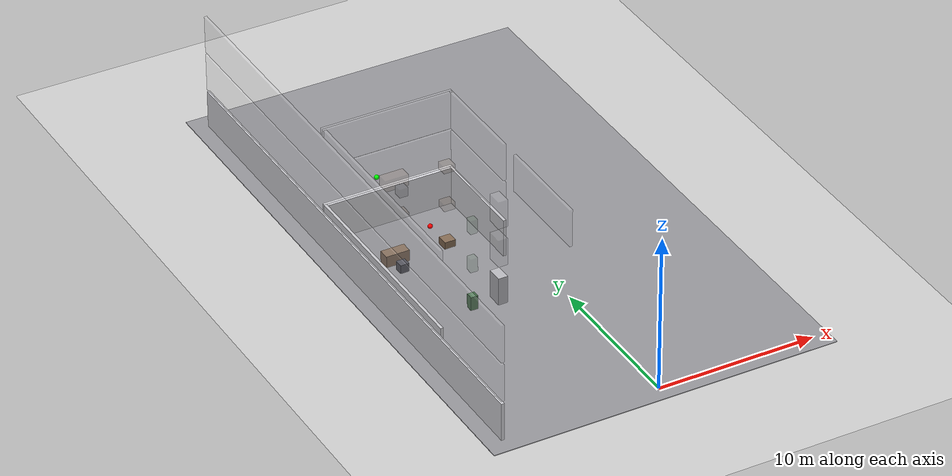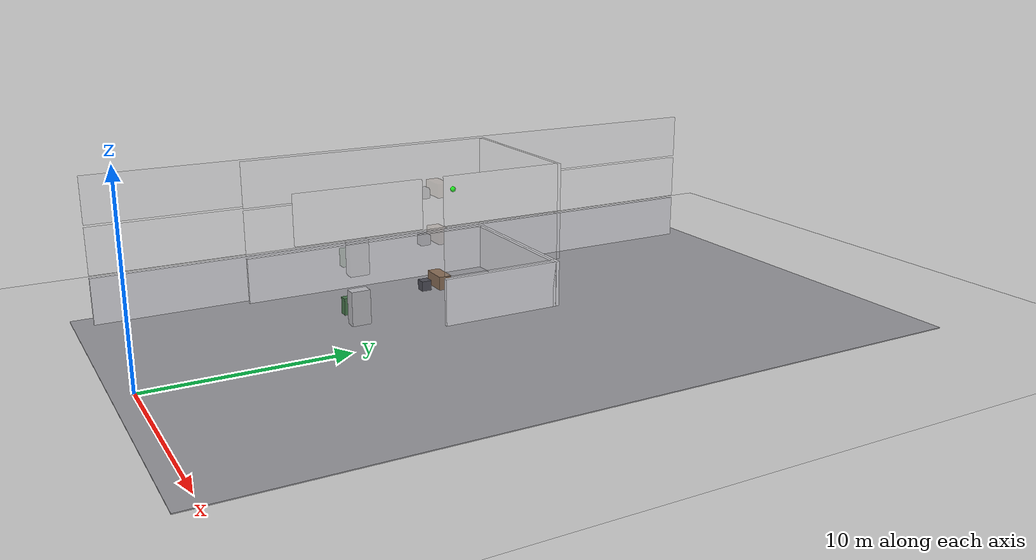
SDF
<sdf version="1.7">
 <world name="generated_world">
  <include><uri>model://sun</uri></include>
  <include><uri>model://ground_plane</uri></include>
  <model name="generated_building">
   <static>true</static>
   <link name="foundation">
    <pose>0.0000 18.0000 -0.1500 0.0000 0.0000 0.0000</pose>
    <collision name="foundation_collision">
     <geometry><box><size>22.0000 38.0000 0.3000</size></box></geometry>
    </collision>
    <visual name="foundation_visual">
     <geometry><box><size>22.0000 38.0000 0.3000</size></box></geometry>
     <material><ambient>0.58 0.58 0.60 1</ambient><diffuse>0.58 0.58 0.60 1</diffuse></material>
    </visual>
    <gravity>false</gravity>
   </link>
   <link name="exterior_west_floor_0">
    <pose>-9.9100 18.0000 1.2250 0.0000 0.0000 0.0000</pose>
    <collision name="exterior_west_floor_0_collision">
     <geometry><box><size>0.1800 36.0000 2.4500</size></box></geometry>
    </collision>
    <visual name="exterior_west_floor_0_visual">
     <geometry><box><size>0.1800 36.0000 2.4500</size></box></geometry>
     <material><ambient>0.86 0.86 0.88 1</ambient><diffuse>0.86 0.86 0.88 1</diffuse></material>
    </visual>
    <gravity>false</gravity>
   </link>
   <link name="floor_0_room_0_corridor_wall_upper">
    <pose>-1.1900 18.6725 1.2250 0.0000 0.0000 0.0000</pose>
    <collision name="floor_0_room_0_corridor_wall_upper_collision">
     <geometry><box><size>0.1800 6.4150 2.4500</size></box></geometry>
    </collision>
    <visual name="floor_0_room_0_corridor_wall_upper_visual">
     <geometry><box><size>0.1800 6.4150 2.4500</size></box></geometry>
     <material><ambient>0.86 0.86 0.88 1</ambient><diffuse>0.86 0.86 0.88 1</diffuse></material>
    </visual>
    <gravity>false</gravity>
   </link>
   <link name="floor_0_room_0_west_wall">
    <pose>-9.4100 14.8650 1.2250 0.0000 0.0000 0.0000</pose>
    <collision name="floor_0_room_0_west_wall_collision">
     <geometry><box><size>0.1800 14.0300 2.4500</size></box></geometry>
    </collision>
    <visual name="floor_0_room_0_west_wall_visual">
     <geometry><box><size>0.1800 14.0300 2.4500</size></box></geometry>
     <material><ambient>0.86 0.86 0.88 1</ambient><diffuse>0.86 0.86 0.88 1</diffuse></material>
    </visual>
    <gravity>false</gravity>
   </link>
   <link name="floor_0_room_0_north_wall">
    <pose>-5.3000 21.7900 1.2250 0.0000 0.0000 0.0000</pose>
    <collision name="floor_0_room_0_north_wall_collision">
     <geometry><box><size>8.4000 0.1800 2.4500</size></box></geometry>
    </collision>
    <visual name="floor_0_room_0_north_wall_visual">
     <geometry><box><size>8.4000 0.1800 2.4500</size></box></geometry>
     <material><ambient>0.86 0.86 0.88 1</ambient><diffuse>0.86 0.86 0.88 1</diffuse></material>
    </visual>
    <gravity>false</gravity>
   </link>
   <link name="floor_0_room_2_south_wall">
    <pose>-5.3000 21.9700 1.2250 0.0000 0.0000 0.0000</pose>
    <collision name="floor_0_room_2_south_wall_collision">
     <geometry><box><size>8.4000 0.1800 2.4500</size></box></geometry>
    </collision>
    <visual name="floor_0_room_2_south_wall_visual">
     <geometry><box><size>8.4000 0.1800 2.4500</size></box></geometry>
     <material><ambient>0.86 0.86 0.88 1</ambient><diffuse>0.86 0.86 0.88 1</diffuse></material>
    </visual>
    <gravity>false</gravity>
   </link>
   <link name="floor_0_room_0_desk">
    <pose>-7.0000 17.9225 0.4500 0.0000 0.0000 0.0000</pose>
    <collision name="floor_0_room_0_desk_collision">
     <geometry><box><size>1.5000 0.7000 0.7500</size></box></geometry>
    </collision>
    <visual name="floor_0_room_0_desk_visual">
     <geometry><box><size>1.5000 0.7000 0.7500</size></box></geometry>
     <material><ambient>0.54 0.43 0.34 1</ambient><diffuse>0.54 0.43 0.34 1</diffuse></material>
    </visual>
    <gravity>false</gravity>
   </link>
   <link name="floor_0_room_0_chair">
    <pose>-7.0000 17.0225 0.2800 0.0000 0.0000 0.0000</pose>
    <collision name="floor_0_room_0_chair_collision">
     <geometry><box><size>0.5500 0.5500 0.5500</size></box></geometry>
    </collision>
    <visual name="floor_0_room_0_chair_visual">
     <geometry><box><size>0.5500 0.5500 0.5500</size></box></geometry>
     <material><ambient>0.30 0.30 0.34 1</ambient><diffuse>0.30 0.30 0.34 1</diffuse></material>
    </visual>
    <gravity>false</gravity>
   </link>
   <link name="floor_0_room_0_cabinet">
    <pose>-3.6000 11.8075 0.9000 0.0000 0.0000 0.0000</pose>
    <collision name="floor_0_room_0_cabinet_collision">
     <geometry><box><size>0.6000 1.0000 1.8000</size></box></geometry>
    </collision>
    <visual name="floor_0_room_0_cabinet_visual">
     <geometry><box><size>0.6000 1.0000 1.8000</size></box></geometry>
     <material><ambient>0.72 0.72 0.74 1</ambient><diffuse>0.72 0.72 0.74 1</diffuse></material>
    </visual>
    <gravity>false</gravity>
   </link>
   <link name="floor_0_room_0_side_table">
    <pose>-3.6000 17.9225 0.3200 0.0000 0.0000 0.0000</pose>
    <collision name="floor_0_room_0_side_table_collision">
     <geometry><box><size>0.7000 0.7000 0.4500</size></box></geometry>
    </collision>
    <visual name="floor_0_room_0_side_table_visual">
     <geometry><box><size>0.7000 0.7000 0.4500</size></box></geometry>
     <material><ambient>0.52 0.42 0.33 1</ambient><diffuse>0.52 0.42 0.33 1</diffuse></material>
    </visual>
    <gravity>false</gravity>
   </link>
   <link name="floor_0_room_0_planter">
    <pose>-5.3000 11.8075 0.4500 0.0000 0.0000 0.0000</pose>
    <collision name="floor_0_room_0_planter_collision">
     <geometry><box><size>0.4500 0.4500 0.9000</size></box></geometry>
    </collision>
    <visual name="floor_0_room_0_planter_visual">
     <geometry><box><size>0.4500 0.4500 0.9000</size></box></geometry>
     <material><ambient>0.28 0.46 0.30 1</ambient><diffuse>0.28 0.46 0.30 1</diffuse></material>
    </visual>
    <gravity>false</gravity>
   </link>
   <link name="exterior_west_floor_1">
    <pose>-9.9100 18.0000 3.8250 0.0000 0.0000 0.0000</pose>
    <collision name="exterior_west_floor_1_collision">
     <geometry><box><size>0.1800 36.0000 2.4500</size></box></geometry>
    </collision>
    <visual name="exterior_west_floor_1_visual">
     <geometry><box><size>0.1800 36.0000 2.4500</size></box></geometry>
     <material><ambient>0.86 0.86 0.88 1</ambient><diffuse>0.86 0.86 0.88 1</diffuse></material>
     <transparency>0.80</transparency>
    </visual>
    <gravity>false</gravity>
   </link>
   <link name="floor_1_room_0_corridor_wall_upper">
    <pose>-1.1900 18.6725 3.8250 0.0000 0.0000 0.0000</pose>
    <collision name="floor_1_room_0_corridor_wall_upper_collision">
     <geometry><box><size>0.1800 6.4150 2.4500</size></box></geometry>
    </collision>
    <visual name="floor_1_room_0_corridor_wall_upper_visual">
     <geometry><box><size>0.1800 6.4150 2.4500</size></box></geometry>
     <material><ambient>0.86 0.86 0.88 1</ambient><diffuse>0.86 0.86 0.88 1</diffuse></material>
     <transparency>0.80</transparency>
    </visual>
    <gravity>false</gravity>
   </link>
   <link name="floor_1_room_0_west_wall">
    <pose>-9.4100 14.8650 3.8250 0.0000 0.0000 0.0000</pose>
    <collision name="floor_1_room_0_west_wall_collision">
     <geometry><box><size>0.1800 14.0300 2.4500</size></box></geometry>
    </collision>
    <visual name="floor_1_room_0_west_wall_visual">
     <geometry><box><size>0.1800 14.0300 2.4500</size></box></geometry>
     <material><ambient>0.86 0.86 0.88 1</ambient><diffuse>0.86 0.86 0.88 1</diffuse></material>
     <transparency>0.80</transparency>
    </visual>
    <gravity>false</gravity>
   </link>
   <link name="floor_1_room_0_north_wall">
    <pose>-5.3000 21.7900 3.8250 0.0000 0.0000 0.0000</pose>
    <collision name="floor_1_room_0_north_wall_collision">
     <geometry><box><size>8.4000 0.1800 2.4500</size></box></geometry>
    </collision>
    <visual name="floor_1_room_0_north_wall_visual">
     <geometry><box><size>8.4000 0.1800 2.4500</size></box></geometry>
     <material><ambient>0.86 0.86 0.88 1</ambient><diffuse>0.86 0.86 0.88 1</diffuse></material>
     <transparency>0.80</transparency>
    </visual>
    <gravity>false</gravity>
   </link>
   <link name="floor_1_room_2_south_wall">
    <pose>-5.3000 21.9700 3.8250 0.0000 0.0000 0.0000</pose>
    <collision name="floor_1_room_2_south_wall_collision">
     <geometry><box><size>8.4000 0.1800 2.4500</size></box></geometry>
    </collision>
    <visual name="floor_1_room_2_south_wall_visual">
     <geometry><box><size>8.4000 0.1800 2.4500</size></box></geometry>
     <material><ambient>0.86 0.86 0.88 1</ambient><diffuse>0.86 0.86 0.88 1</diffuse></material>
     <transparency>0.80</transparency>
    </visual>
    <gravity>false</gravity>
   </link>
   <link name="floor_1_room_0_desk">
    <pose>-7.0000 17.9225 3.0500 0.0000 0.0000 0.0000</pose>
    <collision name="floor_1_room_0_desk_collision">
     <geometry><box><size>1.5000 0.7000 0.7500</size></box></geometry>
    </collision>
    <visual name="floor_1_room_0_desk_visual">
     <geometry><box><size>1.5000 0.7000 0.7500</size></box></geometry>
     <material><ambient>0.54 0.43 0.34 1</ambient><diffuse>0.54 0.43 0.34 1</diffuse></material>
     <transparency>0.80</transparency>
    </visual>
    <gravity>false</gravity>
   </link>
   <link name="floor_1_room_0_chair">
    <pose>-7.0000 17.0225 2.8800 0.0000 0.0000 0.0000</pose>
    <collision name="floor_1_room_0_chair_collision">
     <geometry><box><size>0.5500 0.5500 0.5500</size></box></geometry>
    </collision>
    <visual name="floor_1_room_0_chair_visual">
     <geometry><box><size>0.5500 0.5500 0.5500</size></box></geometry>
     <material><ambient>0.30 0.30 0.34 1</ambient><diffuse>0.30 0.30 0.34 1</diffuse></material>
     <transparency>0.80</transparency>
    </visual>
    <gravity>false</gravity>
   </link>
   <link name="floor_1_room_0_cabinet">
    <pose>-3.6000 11.8075 3.5000 0.0000 0.0000 0.0000</pose>
    <collision name="floor_1_room_0_cabinet_collision">
     <geometry><box><size>0.6000 1.0000 1.8000</size></box></geometry>
    </collision>
    <visual name="floor_1_room_0_cabinet_visual">
     <geometry><box><size>0.6000 1.0000 1.8000</size></box></geometry>
     <material><ambient>0.72 0.72 0.74 1</ambient><diffuse>0.72 0.72 0.74 1</diffuse></material>
     <transparency>0.80</transparency>
    </visual>
    <gravity>false</gravity>
   </link>
   <link name="floor_1_room_0_side_table">
    <pose>-3.6000 17.9225 2.9200 0.0000 0.0000 0.0000</pose>
    <collision name="floor_1_room_0_side_table_collision">
     <geometry><box><size>0.7000 0.7000 0.4500</size></box></geometry>
    </collision>
    <visual name="floor_1_room_0_side_table_visual">
     <geometry><box><size>0.7000 0.7000 0.4500</size></box></geometry>
     <material><ambient>0.52 0.42 0.33 1</ambient><diffuse>0.52 0.42 0.33 1</diffuse></material>
     <transparency>0.80</transparency>
    </visual>
    <gravity>false</gravity>
   </link>
   <link name="floor_1_room_0_planter">
    <pose>-5.3000 11.8075 3.0500 0.0000 0.0000 0.0000</pose>
    <collision name="floor_1_room_0_planter_collision">
     <geometry><box><size>0.4500 0.4500 0.9000</size></box></geometry>
    </collision>
    <visual name="floor_1_room_0_planter_visual">
     <geometry><box><size>0.4500 0.4500 0.9000</size></box></geometry>
     <material><ambient>0.28 0.46 0.30 1</ambient><diffuse>0.28 0.46 0.30 1</diffuse></material>
     <transparency>0.80</transparency>
    </visual>
    <gravity>false</gravity>
   </link>
   <link name="exterior_west_floor_2">
    <pose>-9.9100 18.0000 6.4250 0.0000 0.0000 0.0000</pose>
    <collision name="exterior_west_floor_2_collision">
     <geometry><box><size>0.1800 36.0000 2.4500</size></box></geometry>
    </collision>
    <visual name="exterior_west_floor_2_visual">
     <geometry><box><size>0.1800 36.0000 2.4500</size></box></geometry>
     <material><ambient>0.86 0.86 0.88 1</ambient><diffuse>0.86 0.86 0.88 1</diffuse></material>
     <transparency>0.80</transparency>
    </visual>
    <gravity>false</gravity>
   </link>
   <link name="floor_2_room_0_corridor_wall_lower">
    <pose>-1.1900 11.0575 6.4250 0.0000 0.0000 0.0000</pose>
    <collision name="floor_2_room_0_corridor_wall_lower_collision">
     <geometry><box><size>0.1800 6.4150 2.4500</size></box></geometry>
    </collision>
    <visual name="floor_2_room_0_corridor_wall_lower_visual">
     <geometry><box><size>0.1800 6.4150 2.4500</size></box></geometry>
     <material><ambient>0.86 0.86 0.88 1</ambient><diffuse>0.86 0.86 0.88 1</diffuse></material>
     <transparency>0.80</transparency>
    </visual>
    <gravity>false</gravity>
   </link>
   <link name="floor_2_room_0_corridor_wall_upper">
    <pose>-1.1900 18.6725 6.4250 0.0000 0.0000 0.0000</pose>
    <collision name="floor_2_room_0_corridor_wall_upper_collision">
     <geometry><box><size>0.1800 6.4150 2.4500</size></box></geometry>
    </collision>
    <visual name="floor_2_room_0_corridor_wall_upper_visual">
     <geometry><box><size>0.1800 6.4150 2.4500</size></box></geometry>
     <material><ambient>0.86 0.86 0.88 1</ambient><diffuse>0.86 0.86 0.88 1</diffuse></material>
     <transparency>0.80</transparency>
    </visual>
    <gravity>false</gravity>
   </link>
   <link name="floor_2_room_0_west_wall">
    <pose>-9.4100 14.8650 6.4250 0.0000 0.0000 0.0000</pose>
    <collision name="floor_2_room_0_west_wall_collision">
     <geometry><box><size>0.1800 14.0300 2.4500</size></box></geometry>
    </collision>
    <visual name="floor_2_room_0_west_wall_visual">
     <geometry><box><size>0.1800 14.0300 2.4500</size></box></geometry>
     <material><ambient>0.86 0.86 0.88 1</ambient><diffuse>0.86 0.86 0.88 1</diffuse></material>
     <transparency>0.80</transparency>
    </visual>
    <gravity>false</gravity>
   </link>
   <link name="floor_2_room_0_north_wall">
    <pose>-5.3000 21.7900 6.4250 0.0000 0.0000 0.0000</pose>
    <collision name="floor_2_room_0_north_wall_collision">
     <geometry><box><size>8.4000 0.1800 2.4500</size></box></geometry>
    </collision>
    <visual name="floor_2_room_0_north_wall_visual">
     <geometry><box><size>8.4000 0.1800 2.4500</size></box></geometry>
     <material><ambient>0.86 0.86 0.88 1</ambient><diffuse>0.86 0.86 0.88 1</diffuse></material>
     <transparency>0.80</transparency>
    </visual>
    <gravity>false</gravity>
   </link>
   <link name="floor_2_room_2_south_wall">
    <pose>-5.3000 21.9700 6.4250 0.0000 0.0000 0.0000</pose>
    <collision name="floor_2_room_2_south_wall_collision">
     <geometry><box><size>8.4000 0.1800 2.4500</size></box></geometry>
    </collision>
    <visual name="floor_2_room_2_south_wall_visual">
     <geometry><box><size>8.4000 0.1800 2.4500</size></box></geometry>
     <material><ambient>0.86 0.86 0.88 1</ambient><diffuse>0.86 0.86 0.88 1</diffuse></material>
     <transparency>0.80</transparency>
    </visual>
    <gravity>false</gravity>
   </link>
   <link name="floor_2_room_0_desk">
    <pose>-7.0000 17.9225 5.6500 0.0000 0.0000 0.0000</pose>
    <collision name="floor_2_room_0_desk_collision">
     <geometry><box><size>1.5000 0.7000 0.7500</size></box></geometry>
    </collision>
    <visual name="floor_2_room_0_desk_visual">
     <geometry><box><size>1.5000 0.7000 0.7500</size></box></geometry>
     <material><ambient>0.54 0.43 0.34 1</ambient><diffuse>0.54 0.43 0.34 1</diffuse></material>
     <transparency>0.80</transparency>
    </visual>
    <gravity>false</gravity>
   </link>
   <link name="floor_2_room_0_chair">
    <pose>-7.0000 17.0225 5.4800 0.0000 0.0000 0.0000</pose>
    <collision name="floor_2_room_0_chair_collision">
     <geometry><box><size>0.5500 0.5500 0.5500</size></box></geometry>
    </collision>
    <visual name="floor_2_room_0_chair_visual">
     <geometry><box><size>0.5500 0.5500 0.5500</size></box></geometry>
     <material><ambient>0.30 0.30 0.34 1</ambient><diffuse>0.30 0.30 0.34 1</diffuse></material>
     <transparency>0.80</transparency>
    </visual>
    <gravity>false</gravity>
   </link>
   <link name="floor_2_room_0_cabinet">
    <pose>-3.6000 11.8075 6.1000 0.0000 0.0000 0.0000</pose>
    <collision name="floor_2_room_0_cabinet_collision">
     <geometry><box><size>0.6000 1.0000 1.8000</size></box></geometry>
    </collision>
    <visual name="floor_2_room_0_cabinet_visual">
     <geometry><box><size>0.6000 1.0000 1.8000</size></box></geometry>
     <material><ambient>0.72 0.72 0.74 1</ambient><diffuse>0.72 0.72 0.74 1</diffuse></material>
     <transparency>0.80</transparency>
    </visual>
    <gravity>false</gravity>
   </link>
   <link name="floor_2_room_0_side_table">
    <pose>-3.6000 17.9225 5.5200 0.0000 0.0000 0.0000</pose>
    <collision name="floor_2_room_0_side_table_collision">
     <geometry><box><size>0.7000 0.7000 0.4500</size></box></geometry>
    </collision>
    <visual name="floor_2_room_0_side_table_visual">
     <geometry><box><size>0.7000 0.7000 0.4500</size></box></geometry>
     <material><ambient>0.52 0.42 0.33 1</ambient><diffuse>0.52 0.42 0.33 1</diffuse></material>
     <transparency>0.80</transparency>
    </visual>
    <gravity>false</gravity>
   </link>
   <link name="floor_2_room_0_planter">
    <pose>-5.3000 11.8075 5.6500 0.0000 0.0000 0.0000</pose>
    <collision name="floor_2_room_0_planter_collision">
     <geometry><box><size>0.4500 0.4500 0.9000</size></box></geometry>
    </collision>
    <visual name="floor_2_room_0_planter_visual">
     <geometry><box><size>0.4500 0.4500 0.9000</size></box></geometry>
     <material><ambient>0.28 0.46 0.30 1</ambient><diffuse>0.28 0.46 0.30 1</diffuse></material>
     <transparency>0.80</transparency>
    </visual>
    <gravity>false</gravity>
   </link>
  </model>
  <model name="distractor_green_sphere_00">
   <static>true</static>
   <pose>-7.505830 19.087835 5.350000 0.000000 0.000000 0.000000</pose>
   <link name="link">
    <collision name="collision"><geometry><sphere><radius>0.150</radius></sphere></geometry></collision>
    <visual name="visual">
     <geometry><sphere><radius>0.150</radius></sphere></geometry>
     <material><ambient>0.0 1.0 0.0 1.0</ambient><diffuse>0.0 1.0 0.0 1.0</diffuse></material>
    </visual>
   </link>
  </model>
  <model name="danger_red_sphere_01">
   <static>true</static>
   <pose>-3.598373 19.989951 0.150000 0.000000 0.000000 0.000000</pose>
   <link name="link">
    <collision name="collision"><geometry><sphere><radius>0.150</radius></sphere></geometry></collision>
    <visual name="visual">
     <geometry><sphere><radius>0.150</radius></sphere></geometry>
     <material><ambient>1.0 0.0 0.0 1.0</ambient><diffuse>1.0 0.0 0.0 1.0</diffuse></material>
    </visual>
   </link>
  </model>
 </world>
</sdf>
